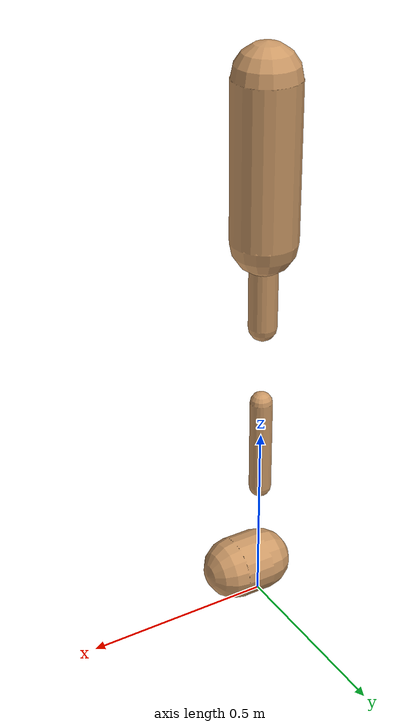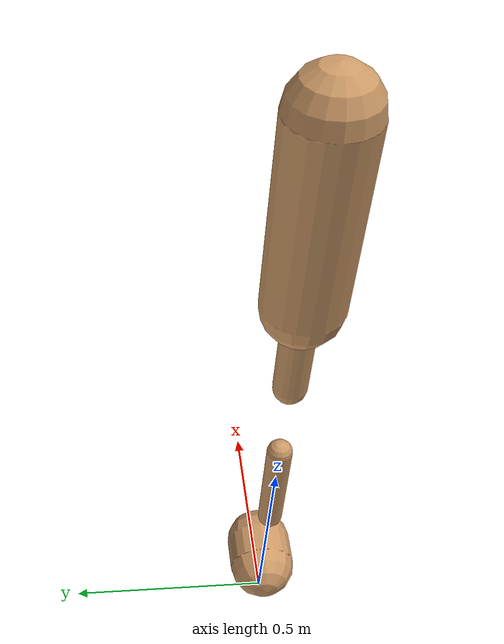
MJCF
<mujoco model="walker2d">
  <compiler angle="degree" coordinate="global" inertiafromgeom="true" />
  <default>
    <joint armature="0.01" damping=".1" limited="true" />
    <geom conaffinity="0" condim="3" contype="1" density="1000" friction="0.8 .1 .1" rgba="0.8 0.6 .4 1" />
  </default>
  <option integrator="RK4" timestep="0.002" />
  <worldbody>

    <body name="torso" pos="0 0 -0.461998530940723">
      <joint armature="0" axis="1 0 0" damping="0" limited="false" name="ignorex" pos="0 0 0" stiffness="0" type="slide" />
      <joint armature="0" axis="0 0 1" damping="0" limited="false" name="ignorez" pos="0 0 0" ref="1.25" stiffness="0" type="slide" />
      <joint armature="0" axis="0 1 0" damping="0" limited="false" name="ignorey" pos="0 0 0" stiffness="0" type="hinge" />
      <geom fromto="0 0 1.45 0 0 1.05" name="torso_geom" size="0.08464614521886554" type="capsule" />
      <body name="thigh">
        <joint axis="0 -1 0" name="thigh_joint" pos="0 0 1.05" range="-150 0" type="hinge" />
        <geom fromto="0.0 0.0 1.05 0.0 0.0 0.8188414093929741" name="thigh_geom" size="0.036713707185930006" type="capsule" />
        <body name="leg" pos="0.0 0.0 0.21884140939297414">
          <joint axis="0 -1 0" name="leg_joint" pos="0 0 0.6" range="-150 0" type="hinge" />
          <geom fromto="0.0 0.0 0.6 0.0 0.0 0.3431571215477489" name="leg_geom" size="0.029370965748744007" type="capsule" />
          <body name="foot" pos="0.0 0.0 0.2431571215477489">
            <joint axis="0 -1 0" name="foot_joint" pos="0 0 0.1" range="-45 45" type="hinge" />
            <geom fromto="0.0 0.0 0.1 0.0777195599741666 0.0 0.1" name="foot_geom" size="0.08343647364442575" type="capsule" />
          </body>
        </body>
      </body>

      <body name="thigh_left">
        <joint axis="0 -1 0" name="thigh_left_joint" pos="0 0 1.05" range="-150 0" type="hinge" />
        <geom fromto="0.0 0.0 1.05 0.0 0.0 0.8188414093929741" name="thigh_left_geom" rgba=".7 .3 .6 1" size="0.036713707185930006" type="capsule" />
        <body name="leg_left" pos="0.0 0.0 0.21884140939297414">
          <joint axis="0 -1 0" name="leg_left_joint" pos="0 0 0.6" range="-150 0" type="hinge" />
          <geom fromto="0.0 0.0 0.6 0.0 0.0 0.3431571215477489" name="leg_left_geom" rgba=".7 .3 .6 1" size="0.029370965748744007" type="capsule" />
          <body name="foot_left" pos="0.0 0.0 0.2431571215477489">
            <joint axis="0 -1 0" name="foot_left_joint" pos="0 0 0.1" range="-45 45" type="hinge" />
            <geom fromto="0.0 0.0 0.1 0.0777195599741666 0.0 0.1" name="foot_left_geom" rgba=".7 .3 .6 1" size="0.08343647364442575" type="capsule" />
          </body>
        </body>
      </body>
    </body>
  </worldbody>
  <actuator>

    <motor ctrllimited="true" ctrlrange="-1.0 1.0" gear="100" joint="thigh_joint" />
    <motor ctrllimited="true" ctrlrange="-1.0 1.0" gear="100" joint="leg_joint" />
    <motor ctrllimited="true" ctrlrange="-1.0 1.0" gear="100" joint="foot_joint" />
    <motor ctrllimited="true" ctrlrange="-1.0 1.0" gear="100" joint="thigh_left_joint" />
    <motor ctrllimited="true" ctrlrange="-1.0 1.0" gear="100" joint="leg_left_joint" />
    <motor ctrllimited="true" ctrlrange="-1.0 1.0" gear="100" joint="foot_left_joint" />

  </actuator>
</mujoco>
